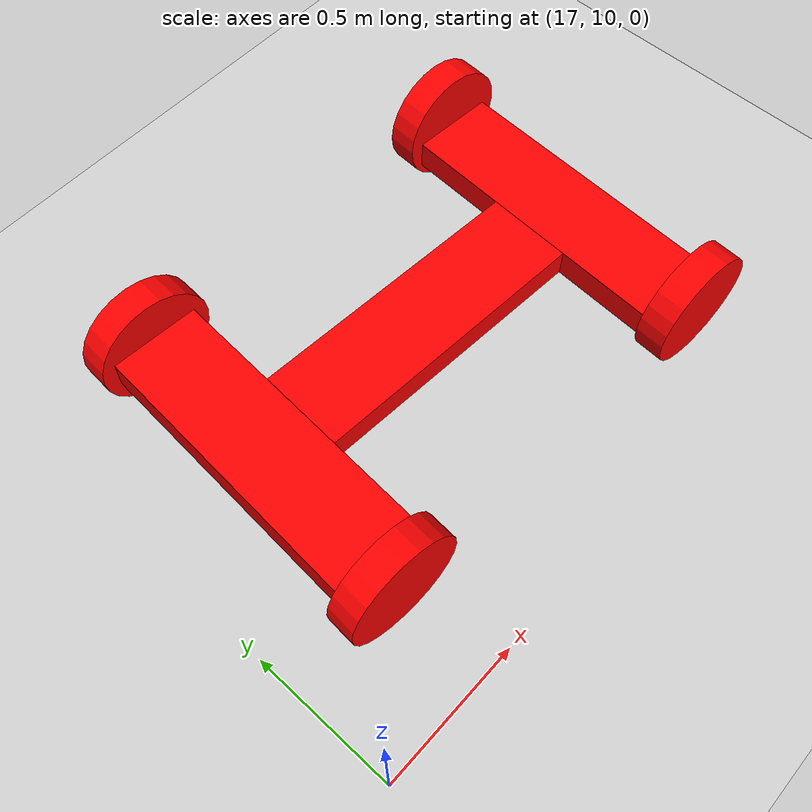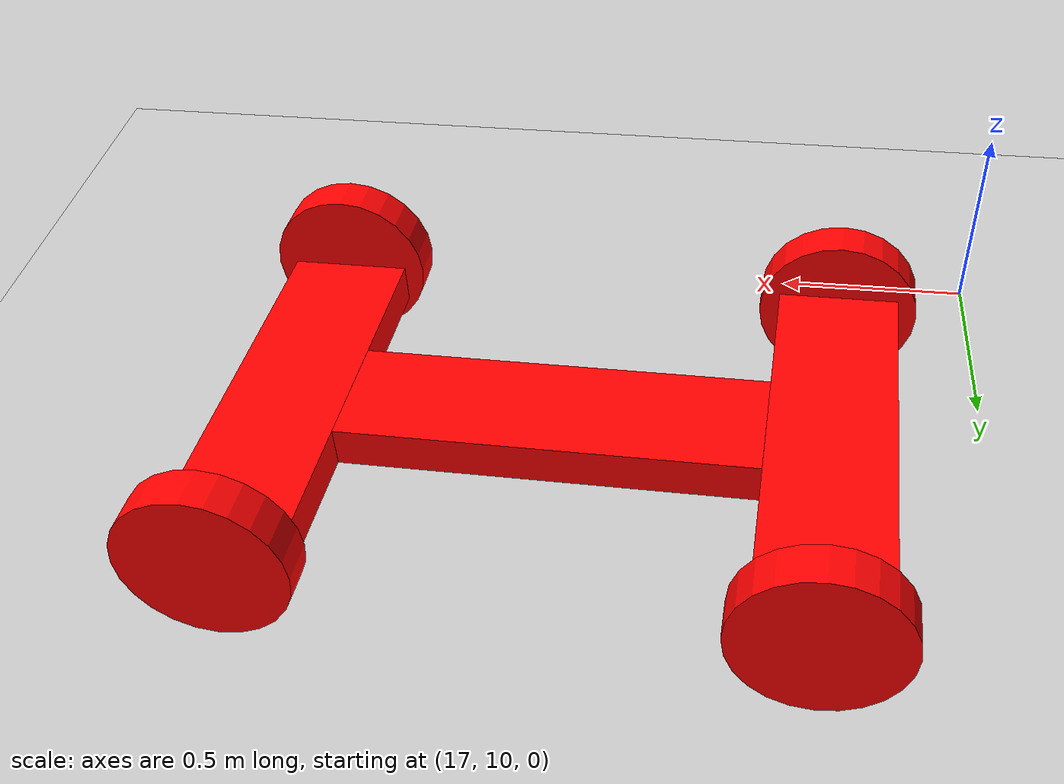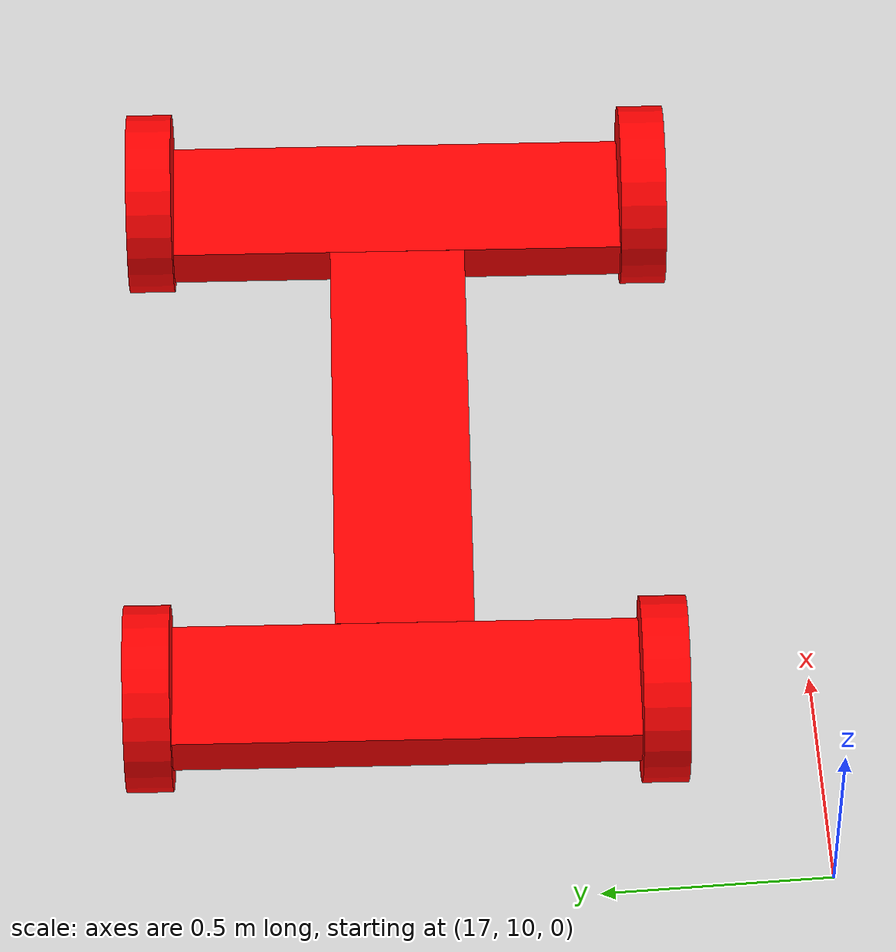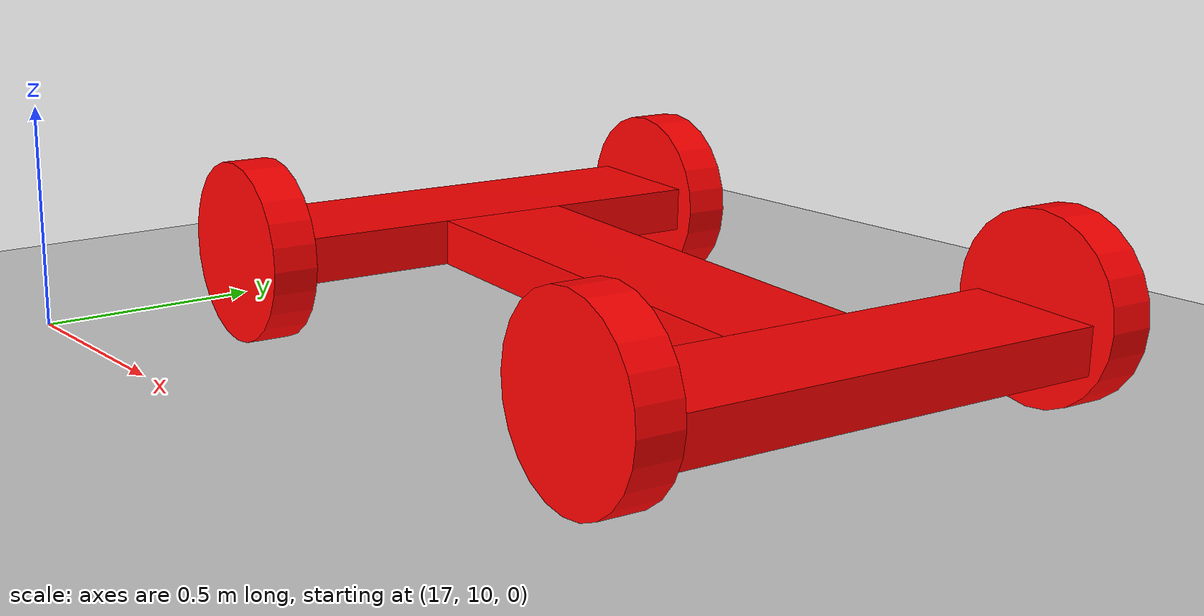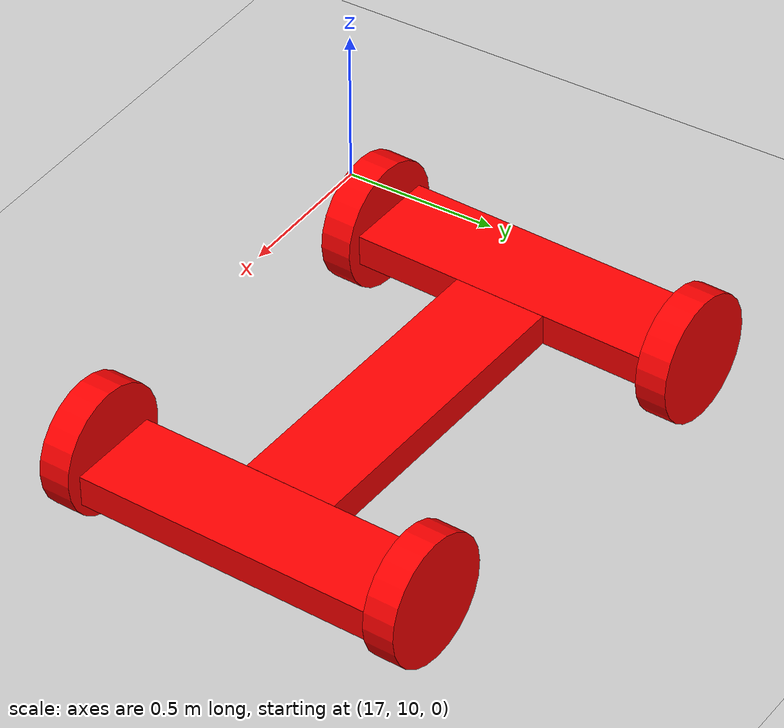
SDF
<sdf version="1.6">
 <world name="default">
  <model name="ground_plane">
   <static>1</static>
   <link name="link">
    <collision name="collision">
     <geometry><plane><normal>0 0 1</normal><size>100 100</size></plane></geometry>
     <surface><friction><ode><mu>100</mu><mu2>50</mu2></ode></friction></surface>
    </collision>
    <visual name="visual">
     <cast_shadows>0</cast_shadows>
     <geometry><plane><normal>0 0 1</normal><size>100 100</size></plane></geometry>
     <material>
      <script><uri>file://media/materials/scripts/gazebo.material</uri><name>Gazebo/Grey</name></script>
     </material>
    </visual>
   </link>
  </model>
  <model name="Robot_clone">
   <link name="link_0">
    <pose>0.650121 -0 -0.012852 0 -0 0</pose>
    <inertial>
     <mass>1</mass>
     <inertia>
      <ixx>0.166667</ixx>
      <ixy>0</ixy>
      <ixz>0</ixz>
      <iyy>0.166667</iyy>
      <iyz>0</iyz>
      <izz>0.166667</izz>
     </inertia>
    </inertial>
    <visual name="visual">
     <geometry><box><size>0.3 1 0.1</size></box></geometry>
     <material>
      <lighting>1</lighting>
      <script><uri>file://media/materials/scripts/gazebo.material</uri><name>Gazebo/Grey</name></script>
      <shader type="pixel"><normal_map>__default__</normal_map></shader>
      <ambient>1 0 0 1</ambient>
      <diffuse>1 0 0 1</diffuse>
      <specular>0.01 0.01 0.01 1</specular>
      <emissive>0 0 0 1</emissive>
     </material>
    </visual>
    <collision name="collision">
     <geometry><box><size>0.3 1 0.1</size></box></geometry>
     <surface>
      <friction>
       <ode><mu>1</mu><mu2>1</mu2><fdir1>0 0 0</fdir1><slip1>0</slip1><slip2>0</slip2></ode>
       <torsional>
        <coefficient>1</coefficient>
        <patch_radius>0</patch_radius>
        <surface_radius>0</surface_radius>
        <use_patch_radius>1</use_patch_radius>
        <ode><slip>0</slip></ode>
       </torsional>
      </friction>
      <bounce><restitution_coefficient>0</restitution_coefficient><threshold>1e+06</threshold></bounce>
      <contact>
       <collide_without_contact>0</collide_without_contact>
       <collide_without_contact_bitmask>1</collide_without_contact_bitmask>
       <collide_bitmask>1</collide_bitmask>
       <ode>
        <soft_cfm>0</soft_cfm>
        <soft_erp>0.2</soft_erp>
        <kp>1e+13</kp>
        <kd>1</kd>
        <max_vel>0.01</max_vel>
        <min_depth>0</min_depth>
       </ode>
       <bullet>
        <split_impulse>1</split_impulse>
        <split_impulse_penetration_threshold>-0.01</split_impulse_penetration_threshold>
        <soft_cfm>0</soft_cfm>
        <soft_erp>0.2</soft_erp>
        <kp>1e+13</kp>
        <kd>1</kd>
       </bullet>
      </contact>
     </surface>
    </collision>
   </link>
   <link name="link_0_clone">
    <pose>2e-06 -0 -0.012852 0 -0 1.57</pose>
    <inertial>
     <mass>1</mass>
     <inertia>
      <ixx>0.166667</ixx>
      <ixy>0</ixy>
      <ixz>0</ixz>
      <iyy>0.166667</iyy>
      <iyz>0</iyz>
      <izz>0.166667</izz>
     </inertia>
    </inertial>
    <visual name="visual">
     <geometry><box><size>0.3 1 0.1</size></box></geometry>
     <material>
      <lighting>1</lighting>
      <script><uri>file://media/materials/scripts/gazebo.material</uri><name>Gazebo/Grey</name></script>
      <shader type="pixel"><normal_map>__default__</normal_map></shader>
      <ambient>1 0 0 1</ambient>
      <diffuse>1 0 0 1</diffuse>
      <specular>0.01 0.01 0.01 1</specular>
      <emissive>0 0 0 1</emissive>
     </material>
    </visual>
    <collision name="collision">
     <geometry><box><size>0.3 1 0.1</size></box></geometry>
     <surface>
      <friction>
       <ode><mu>1</mu><mu2>1</mu2><fdir1>0 0 0</fdir1><slip1>0</slip1><slip2>0</slip2></ode>
       <torsional>
        <coefficient>1</coefficient>
        <patch_radius>0</patch_radius>
        <surface_radius>0</surface_radius>
        <use_patch_radius>1</use_patch_radius>
        <ode><slip>0</slip></ode>
       </torsional>
      </friction>
      <bounce><restitution_coefficient>0</restitution_coefficient><threshold>1e+06</threshold></bounce>
      <contact>
       <collide_without_contact>0</collide_without_contact>
       <collide_without_contact_bitmask>1</collide_without_contact_bitmask>
       <collide_bitmask>1</collide_bitmask>
       <ode>
        <soft_cfm>0</soft_cfm>
        <soft_erp>0.2</soft_erp>
        <kp>1e+13</kp>
        <kd>1</kd>
        <max_vel>0.01</max_vel>
        <min_depth>0</min_depth>
       </ode>
       <bullet>
        <split_impulse>1</split_impulse>
        <split_impulse_penetration_threshold>-0.01</split_impulse_penetration_threshold>
        <soft_cfm>0</soft_cfm>
        <soft_erp>0.2</soft_erp>
        <kp>1e+13</kp>
        <kd>1</kd>
       </bullet>
      </contact>
     </surface>
    </collision>
   </link>
   <link name="link_0_clone_0">
    <pose>-0.650118 0 -0.012852 0 -0 0</pose>
    <inertial>
     <mass>1</mass>
     <inertia>
      <ixx>0.166667</ixx>
      <ixy>0</ixy>
      <ixz>0</ixz>
      <iyy>0.166667</iyy>
      <iyz>0</iyz>
      <izz>0.166667</izz>
     </inertia>
    </inertial>
    <visual name="visual">
     <geometry><box><size>0.3 1 0.1</size></box></geometry>
     <material>
      <lighting>1</lighting>
      <script><uri>file://media/materials/scripts/gazebo.material</uri><name>Gazebo/Grey</name></script>
      <shader type="pixel"><normal_map>__default__</normal_map></shader>
      <ambient>1 0 0 1</ambient>
      <diffuse>1 0 0 1</diffuse>
      <specular>0.01 0.01 0.01 1</specular>
      <emissive>0 0 0 1</emissive>
     </material>
    </visual>
    <collision name="collision">
     <geometry><box><size>0.3 1 0.1</size></box></geometry>
     <surface>
      <friction>
       <ode><mu>1</mu><mu2>1</mu2><fdir1>0 0 0</fdir1><slip1>0</slip1><slip2>0</slip2></ode>
       <torsional>
        <coefficient>1</coefficient>
        <patch_radius>0</patch_radius>
        <surface_radius>0</surface_radius>
        <use_patch_radius>1</use_patch_radius>
        <ode><slip>0</slip></ode>
       </torsional>
      </friction>
      <bounce><restitution_coefficient>0</restitution_coefficient><threshold>1e+06</threshold></bounce>
      <contact>
       <collide_without_contact>0</collide_without_contact>
       <collide_without_contact_bitmask>1</collide_without_contact_bitmask>
       <collide_bitmask>1</collide_bitmask>
       <ode>
        <soft_cfm>0</soft_cfm>
        <soft_erp>0.2</soft_erp>
        <kp>1e+13</kp>
        <kd>1</kd>
        <max_vel>0.01</max_vel>
        <min_depth>0</min_depth>
       </ode>
       <bullet>
        <split_impulse>1</split_impulse>
        <split_impulse_penetration_threshold>-0.01</split_impulse_penetration_threshold>
        <soft_cfm>0</soft_cfm>
        <soft_erp>0.2</soft_erp>
        <kp>1e+13</kp>
        <kd>1</kd>
       </bullet>
      </contact>
     </surface>
    </collision>
   </link>
   <link name="link_2">
    <pose>0.650121 -0.550159 0.032112 1.57 -0 0</pose>
    <inertial>
     <mass>1</mass>
     <inertia><ixx>0.145833</ixx><ixy>0</ixy><ixz>0</ixz><iyy>0.145833</iyy><iyz>0</iyz><izz>0.125</izz></inertia>
    </inertial>
    <visual name="visual">
     <geometry><cylinder><radius>0.2</radius><length>0.1</length></cylinder></geometry>
     <material>
      <lighting>1</lighting>
      <script><uri>file://media/materials/scripts/gazebo.material</uri><name>Gazebo/Grey</name></script>
      <shader type="pixel"><normal_map>__default__</normal_map></shader>
      <ambient>1 0 0 1</ambient>
      <diffuse>1 0 0 1</diffuse>
      <specular>0.01 0.01 0.01 1</specular>
      <emissive>0 0 0 1</emissive>
     </material>
    </visual>
    <collision name="collision">
     <geometry><cylinder><radius>0.2</radius><length>0.1</length></cylinder></geometry>
     <surface>
      <friction>
       <ode><mu>1</mu><mu2>1</mu2><fdir1>0 0 0</fdir1><slip1>0</slip1><slip2>0</slip2></ode>
       <torsional>
        <coefficient>1</coefficient>
        <patch_radius>0</patch_radius>
        <surface_radius>0</surface_radius>
        <use_patch_radius>1</use_patch_radius>
        <ode><slip>0</slip></ode>
       </torsional>
      </friction>
      <bounce><restitution_coefficient>0</restitution_coefficient><threshold>1e+06</threshold></bounce>
      <contact>
       <collide_without_contact>0</collide_without_contact>
       <collide_without_contact_bitmask>1</collide_without_contact_bitmask>
       <collide_bitmask>1</collide_bitmask>
       <ode>
        <soft_cfm>0</soft_cfm>
        <soft_erp>0.2</soft_erp>
        <kp>1e+13</kp>
        <kd>1</kd>
        <max_vel>0.01</max_vel>
        <min_depth>0</min_depth>
       </ode>
       <bullet>
        <split_impulse>1</split_impulse>
        <split_impulse_penetration_threshold>-0.01</split_impulse_penetration_threshold>
        <soft_cfm>0</soft_cfm>
        <soft_erp>0.2</soft_erp>
        <kp>1e+13</kp>
        <kd>1</kd>
       </bullet>
      </contact>
     </surface>
    </collision>
   </link>
   <link name="link_2_clone">
    <pose>0.650121 0.550159 0.032148 1.57 -0 0</pose>
    <inertial>
     <mass>1</mass>
     <inertia><ixx>0.145833</ixx><ixy>0</ixy><ixz>0</ixz><iyy>0.145833</iyy><iyz>0</iyz><izz>0.125</izz></inertia>
    </inertial>
    <visual name="visual">
     <geometry><cylinder><radius>0.2</radius><length>0.1</length></cylinder></geometry>
     <material>
      <lighting>1</lighting>
      <script><uri>file://media/materials/scripts/gazebo.material</uri><name>Gazebo/Grey</name></script>
      <shader type="pixel"><normal_map>__default__</normal_map></shader>
      <ambient>1 0 0 1</ambient>
      <diffuse>1 0 0 1</diffuse>
      <specular>0.01 0.01 0.01 1</specular>
      <emissive>0 0 0 1</emissive>
     </material>
    </visual>
    <collision name="collision">
     <geometry><cylinder><radius>0.2</radius><length>0.1</length></cylinder></geometry>
     <surface>
      <friction>
       <ode><mu>1</mu><mu2>1</mu2><fdir1>0 0 0</fdir1><slip1>0</slip1><slip2>0</slip2></ode>
       <torsional>
        <coefficient>1</coefficient>
        <patch_radius>0</patch_radius>
        <surface_radius>0</surface_radius>
        <use_patch_radius>1</use_patch_radius>
        <ode><slip>0</slip></ode>
       </torsional>
      </friction>
      <bounce><restitution_coefficient>0</restitution_coefficient><threshold>1e+06</threshold></bounce>
      <contact>
       <collide_without_contact>0</collide_without_contact>
       <collide_without_contact_bitmask>1</collide_without_contact_bitmask>
       <collide_bitmask>1</collide_bitmask>
       <ode>
        <soft_cfm>0</soft_cfm>
        <soft_erp>0.2</soft_erp>
        <kp>1e+13</kp>
        <kd>1</kd>
        <max_vel>0.01</max_vel>
        <min_depth>0</min_depth>
       </ode>
       <bullet>
        <split_impulse>1</split_impulse>
        <split_impulse_penetration_threshold>-0.01</split_impulse_penetration_threshold>
        <soft_cfm>0</soft_cfm>
        <soft_erp>0.2</soft_erp>
        <kp>1e+13</kp>
        <kd>1</kd>
       </bullet>
      </contact>
     </surface>
    </collision>
   </link>
   <link name="link_2_clone_0">
    <pose>-0.650118 -0.550159 -0.012852 1.57 -0 0</pose>
    <inertial>
     <mass>1</mass>
     <inertia><ixx>0.145833</ixx><ixy>0</ixy><ixz>0</ixz><iyy>0.145833</iyy><iyz>0</iyz><izz>0.125</izz></inertia>
    </inertial>
    <visual name="visual">
     <geometry><cylinder><radius>0.2</radius><length>0.1</length></cylinder></geometry>
     <material>
      <lighting>1</lighting>
      <script><uri>file://media/materials/scripts/gazebo.material</uri><name>Gazebo/Grey</name></script>
      <shader type="pixel"><normal_map>__default__</normal_map></shader>
      <ambient>1 0 0 1</ambient>
      <diffuse>1 0 0 1</diffuse>
      <specular>0.01 0.01 0.01 1</specular>
      <emissive>0 0 0 1</emissive>
     </material>
    </visual>
    <collision name="collision">
     <geometry><cylinder><radius>0.2</radius><length>0.1</length></cylinder></geometry>
     <surface>
      <friction>
       <ode><mu>1</mu><mu2>1</mu2><fdir1>0 0 0</fdir1><slip1>0</slip1><slip2>0</slip2></ode>
       <torsional>
        <coefficient>1</coefficient>
        <patch_radius>0</patch_radius>
        <surface_radius>0</surface_radius>
        <use_patch_radius>1</use_patch_radius>
        <ode><slip>0</slip></ode>
       </torsional>
      </friction>
      <bounce><restitution_coefficient>0</restitution_coefficient><threshold>1e+06</threshold></bounce>
      <contact>
       <collide_without_contact>0</collide_without_contact>
       <collide_without_contact_bitmask>1</collide_without_contact_bitmask>
       <collide_bitmask>1</collide_bitmask>
       <ode>
        <soft_cfm>0</soft_cfm>
        <soft_erp>0.2</soft_erp>
        <kp>1e+13</kp>
        <kd>1</kd>
        <max_vel>0.01</max_vel>
        <min_depth>0</min_depth>
       </ode>
       <bullet>
        <split_impulse>1</split_impulse>
        <split_impulse_penetration_threshold>-0.01</split_impulse_penetration_threshold>
        <soft_cfm>0</soft_cfm>
        <soft_erp>0.2</soft_erp>
        <kp>1e+13</kp>
        <kd>1</kd>
       </bullet>
      </contact>
     </surface>
    </collision>
   </link>
   <link name="link_2_clone_1">
    <pose>-0.650118 0.550159 -0.012852 1.57 -0 0</pose>
    <inertial>
     <mass>1</mass>
     <inertia><ixx>0.145833</ixx><ixy>0</ixy><ixz>0</ixz><iyy>0.145833</iyy><iyz>0</iyz><izz>0.125</izz></inertia>
    </inertial>
    <visual name="visual">
     <geometry><cylinder><radius>0.2</radius><length>0.1</length></cylinder></geometry>
     <material>
      <lighting>1</lighting>
      <script><uri>file://media/materials/scripts/gazebo.material</uri><name>Gazebo/Grey</name></script>
      <shader type="pixel"><normal_map>__default__</normal_map></shader>
      <ambient>1 0 0 1</ambient>
      <diffuse>1 0 0 1</diffuse>
      <specular>0.01 0.01 0.01 1</specular>
      <emissive>0 0 0 1</emissive>
     </material>
    </visual>
    <collision name="collision">
     <geometry><cylinder><radius>0.2</radius><length>0.1</length></cylinder></geometry>
     <surface>
      <friction>
       <ode><mu>1</mu><mu2>1</mu2><fdir1>0 0 0</fdir1><slip1>0</slip1><slip2>0</slip2></ode>
       <torsional>
        <coefficient>1</coefficient>
        <patch_radius>0</patch_radius>
        <surface_radius>0</surface_radius>
        <use_patch_radius>1</use_patch_radius>
        <ode><slip>0</slip></ode>
       </torsional>
      </friction>
      <bounce><restitution_coefficient>0</restitution_coefficient><threshold>1e+06</threshold></bounce>
      <contact>
       <collide_without_contact>0</collide_without_contact>
       <collide_without_contact_bitmask>1</collide_without_contact_bitmask>
       <collide_bitmask>1</collide_bitmask>
       <ode>
        <soft_cfm>0</soft_cfm>
        <soft_erp>0.2</soft_erp>
        <kp>1e+13</kp>
        <kd>1</kd>
        <max_vel>0.01</max_vel>
        <min_depth>0</min_depth>
       </ode>
       <bullet>
        <split_impulse>1</split_impulse>
        <split_impulse_penetration_threshold>-0.01</split_impulse_penetration_threshold>
        <soft_cfm>0</soft_cfm>
        <soft_erp>0.2</soft_erp>
        <kp>1e+13</kp>
        <kd>1</kd>
       </bullet>
      </contact>
     </surface>
    </collision>
   </link>
   <joint name="link_0_JOINT_2" type="revolute">
    <parent>link_0</parent>
    <child>link_2</child>
    <axis>
     <xyz>1 0 0</xyz>
     <use_parent_model_frame>0</use_parent_model_frame>
     <limit>
      <lower>-1.79769e+308</lower>
      <upper>1.79769e+308</upper>
      <effort>-1</effort>
      <velocity>-1</velocity>
     </limit>
     <dynamics>
      <spring_reference>0</spring_reference>
      <spring_stiffness>0</spring_stiffness>
      <damping>0</damping>
      <friction>0</friction>
     </dynamics>
    </axis>
    <physics>
     <ode><limit><cfm>0</cfm><erp>0.2</erp></limit><suspension><cfm>0</cfm><erp>0.2</erp></suspension></ode>
    </physics>
   </joint>
   <joint name="link_0_JOINT_3" type="revolute">
    <parent>link_0</parent>
    <child>link_2_clone</child>
    <axis>
     <xyz>1 0 0</xyz>
     <use_parent_model_frame>0</use_parent_model_frame>
     <limit>
      <lower>-1.79769e+308</lower>
      <upper>1.79769e+308</upper>
      <effort>-1</effort>
      <velocity>-1</velocity>
     </limit>
     <dynamics>
      <spring_reference>0</spring_reference>
      <spring_stiffness>0</spring_stiffness>
      <damping>0</damping>
      <friction>0</friction>
     </dynamics>
    </axis>
    <physics>
     <ode><limit><cfm>0</cfm><erp>0.2</erp></limit><suspension><cfm>0</cfm><erp>0.2</erp></suspension></ode>
    </physics>
   </joint>
   <joint name="link_0_clone_0_JOINT_4" type="revolute">
    <parent>link_0_clone_0</parent>
    <child>link_2_clone_0</child>
    <axis>
     <xyz>1 0 0</xyz>
     <use_parent_model_frame>0</use_parent_model_frame>
     <limit>
      <lower>-1.79769e+308</lower>
      <upper>1.79769e+308</upper>
      <effort>-1</effort>
      <velocity>-1</velocity>
     </limit>
     <dynamics>
      <spring_reference>0</spring_reference>
      <spring_stiffness>0</spring_stiffness>
      <damping>0</damping>
      <friction>0</friction>
     </dynamics>
    </axis>
    <physics>
     <ode><limit><cfm>0</cfm><erp>0.2</erp></limit><suspension><cfm>0</cfm><erp>0.2</erp></suspension></ode>
    </physics>
   </joint>
   <joint name="link_0_clone_0_JOINT_5" type="revolute">
    <parent>link_0_clone_0</parent>
    <child>link_2_clone_1</child>
    <axis>
     <xyz>1 0 0</xyz>
     <use_parent_model_frame>0</use_parent_model_frame>
     <limit>
      <lower>-1.79769e+308</lower>
      <upper>1.79769e+308</upper>
      <effort>-1</effort>
      <velocity>-1</velocity>
     </limit>
     <dynamics>
      <spring_reference>0</spring_reference>
      <spring_stiffness>0</spring_stiffness>
      <damping>0</damping>
      <friction>0</friction>
     </dynamics>
    </axis>
    <physics>
     <ode><limit><cfm>0</cfm><erp>0.2</erp></limit><suspension><cfm>0</cfm><erp>0.2</erp></suspension></ode>
    </physics>
   </joint>
   <joint name="link_0_clone_JOINT_0" type="revolute">
    <parent>link_0_clone</parent>
    <child>link_0</child>
    <axis>
     <xyz>1 0 0</xyz>
     <use_parent_model_frame>0</use_parent_model_frame>
     <limit>
      <lower>-1.79769e+308</lower>
      <upper>1.79769e+308</upper>
      <effort>-1</effort>
      <velocity>-1</velocity>
     </limit>
     <dynamics>
      <spring_reference>0</spring_reference>
      <spring_stiffness>0</spring_stiffness>
      <damping>0</damping>
      <friction>0</friction>
     </dynamics>
    </axis>
    <physics>
     <ode><limit><cfm>0</cfm><erp>0.2</erp></limit><suspension><cfm>0</cfm><erp>0.2</erp></suspension></ode>
    </physics>
   </joint>
   <joint name="link_0_clone_JOINT_1" type="revolute">
    <parent>link_0_clone</parent>
    <child>link_0_clone_0</child>
    <axis>
     <xyz>1 0 0</xyz>
     <use_parent_model_frame>0</use_parent_model_frame>
     <limit>
      <lower>-1.79769e+308</lower>
      <upper>1.79769e+308</upper>
      <effort>-1</effort>
      <velocity>-1</velocity>
     </limit>
     <dynamics>
      <spring_reference>0</spring_reference>
      <spring_stiffness>0</spring_stiffness>
      <damping>0</damping>
      <friction>0</friction>
     </dynamics>
    </axis>
    <physics>
     <ode><limit><cfm>0</cfm><erp>0.2</erp></limit><suspension><cfm>0</cfm><erp>0.2</erp></suspension></ode>
    </physics>
   </joint>
   <static>0</static>
   <pose>18.0592 10.8484 0.190362 -2.3e-05 0.034581 -0.055705</pose>
  </model>
 </world>
</sdf>
